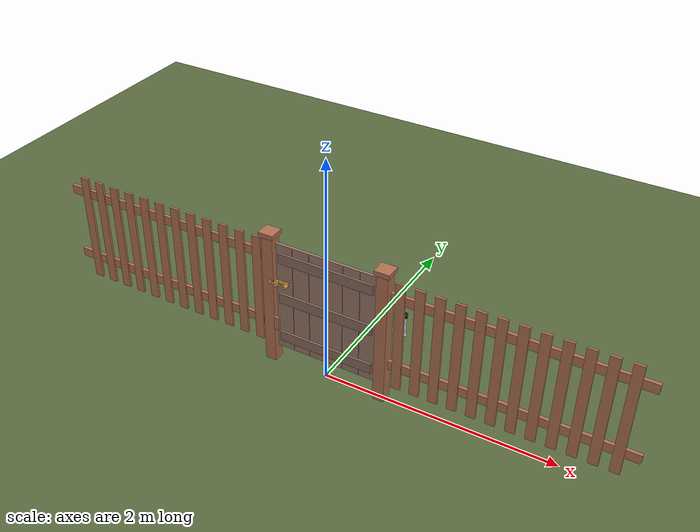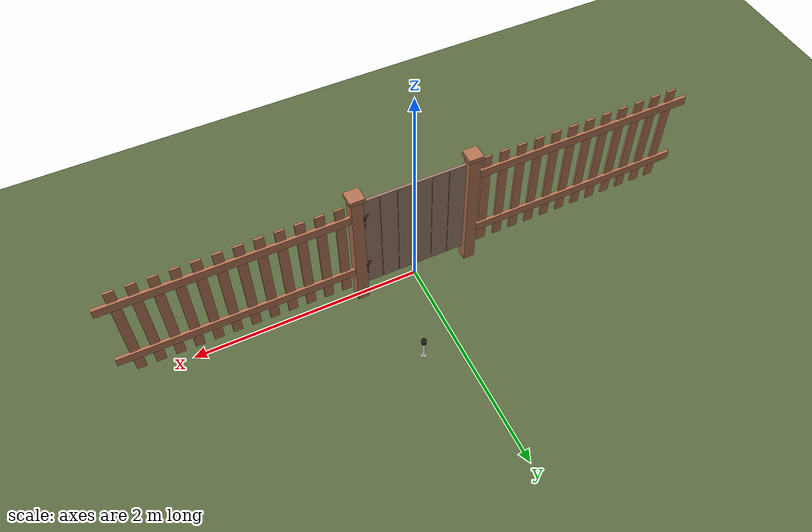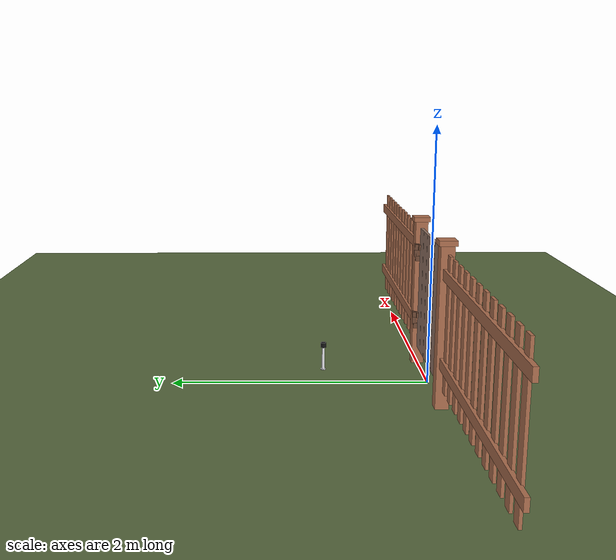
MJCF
<?xml version="1.0" ?>
<mujoco model="db0253_gate_swing_full">
  <compiler angle="radian" meshdir="../../hardware" texturedir="../../textures" autolimits="true" inertiafromgeom="false"/>
  <option timestep="0.002" integrator="implicitfast" cone="elliptic" impratio="10" noslip_iterations="3">
    <flag multiccd="enable"/>
  </option>
  <size memory="16M"/>
  <default>
    <geom condim="4" solref="0.005 1" solimp="0.95 0.99 0.001"/>
    <joint solreflimit="0.005 1" solimplimit="0.95 0.99 0.001"/>
    <tendon solreflimit="0.005 1"/>
    <equality solref="0.002 1"/>
  </default>
  <visual>
    <headlight ambient="0.4 0.4 0.4" diffuse="0.7 0.7 0.7" specular="0.2 0.2 0.2"/>
    <quality shadowsize="4096"/>
    <map znear="0.01" zfar="60"/>
  </visual>
  <asset>
    <mesh name="hinge_b433cbce2b" file="hinge_b433cbce2b.obj"/>
    <mesh name="hinge_jamb_c00731b0bd" file="hinge_jamb_c00731b0bd.obj"/>
    <material name="mat_floor" rgba="0.35 0.42 0.25 1" specular="0.2" shininess="0.15" reflectance="0"/>
    <material name="mat_wall" rgba="0.78 0.76 0.7 1" specular="0.2" shininess="0.1" reflectance="0"/>
    <material name="mat_leaf" rgba="0.6 0.475 0.41 1" specular="0.2" shininess="0.4" reflectance="0"/>
    <material name="mat_leaf_brace" rgba="0.54 0.427 0.369 1" specular="0.2" shininess="0.2" reflectance="0"/>
    <material name="mat_hinge" rgba="0.45 0.3 0.22 1" specular="0.5" shininess="0.1" reflectance="0.2"/>
    <material name="mat_op_brass" rgba="0.85 0.66 0.3 1" specular="0.8" shininess="0.75" reflectance="0.4"/>
    <material name="mat_frame" rgba="0.7 0.45 0.32 1" specular="0.2" shininess="0.4" reflectance="0"/>
    <material name="mat_bumper_stop" rgba="0.08 0.08 0.08 1" specular="0.2" shininess="0.1" reflectance="0"/>
    <material name="mat_stop_base" rgba="0.9 0.9 0.92 1" specular="0.8" shininess="0.9" reflectance="0.4"/>
    <material name="mat_fence" rgba="0.7 0.45 0.32 1" specular="0.2" shininess="0.4" reflectance="0"/>
    <texture name="skybox" type="skybox" builtin="gradient" rgb1="0.6 0.7 0.85" rgb2="0.9 0.92 0.95" width="256" height="256"/>
  </asset>
  <worldbody>
    <light name="sun" pos="1.5 -2.5 4" dir="-0.3 0.5 -0.8" directional="true" diffuse="0.8 0.8 0.8" specular="0.3 0.3 0.3" castshadow="true"/>
    <light name="fill" pos="-1.5 2.5 3" dir="0.3 -0.5 -0.7" directional="true" diffuse="0.35 0.35 0.4" castshadow="false"/>
    <camera name="robot_view" pos="0 -1.875 1.035" xyaxes="1 0 0 0 0.26963 0.962964" fovy="52"/>
    <camera name="far_view" pos="0 1.875 1.035" xyaxes="-1 0 0 0 -0.26963 0.962964" fovy="52"/>
    <camera name="iso" pos="-1.425 -1.575 1.335" xyaxes="0.741536 -0.670913 0 0.242917 0.268487 0.932151" fovy="46"/>
    <camera name="detail_handle" pos="-0.232 -0.896 1.08" xyaxes="0.97561 0.219512 0 -0.070934 0.315262 0.94635" fovy="38"/>
    <geom name="floor" type="box" size="6 6 0.05" pos="0 0 -0.05" material="mat_floor" group="0" contype="1" conaffinity="1" friction="0.8 0.005 0.0001" density="2400"/>
    <geom name="hinge_0_jamb" type="mesh" mesh="hinge_jamb_c00731b0bd" pos="0.453 0.05 0.4" quat="0 0 0 1" material="mat_hinge" group="1" contype="0" conaffinity="0" density="7850"/>
    <geom name="hinge_0_jamb_lug" type="box" size="0.01 0.01575 0.02" pos="0.453 0.03025 0.32956" material="mat_hinge" group="1" contype="0" conaffinity="0" density="7850"/>
    <geom name="hinge_1_jamb" type="mesh" mesh="hinge_jamb_c00731b0bd" pos="0.453 0.05 0.97" quat="0 0 0 1" material="mat_hinge" group="1" contype="0" conaffinity="0" density="7850"/>
    <geom name="hinge_1_jamb_lug" type="box" size="0.01 0.01575 0.02" pos="0.453 0.03025 0.89956" material="mat_hinge" group="1" contype="0" conaffinity="0" density="7850"/>
    <geom name="leaf_slide_bolt_keeper_leg_n" type="box" size="0.007 0.0025 0.013" pos="-0.476 -0.063 0.8115" quat="0 0 -0.707107 0.707107" material="mat_op_brass" group="0" contype="1" conaffinity="1" friction="0.6 0.005 0.0001" density="7800"/>
    <geom name="leaf_slide_bolt_keeper_leg_p" type="box" size="0.007 0.0025 0.013" pos="-0.476 -0.063 0.7885" quat="0 0 -0.707107 0.707107" material="mat_op_brass" group="0" contype="1" conaffinity="1" friction="0.6 0.005 0.0001" density="7800"/>
    <geom name="leaf_slide_bolt_keeper_bridge" type="box" size="0.007 0.014 0.0025" pos="-0.476 -0.0735 0.8" quat="0 0 -0.707107 0.707107" material="mat_op_brass" group="0" contype="1" conaffinity="1" friction="0.6 0.005 0.0001" density="7800"/>
    <geom name="leaf_slide_bolt_keeper_base" type="box" size="0.015 0.02 0.001" pos="-0.476 -0.051 0.8" quat="0 0 -0.707107 0.707107" material="mat_op_brass" group="1" contype="0" conaffinity="0" density="7800"/>
    <geom name="post_hinge" type="box" size="0.05 0.05 0.6" pos="0.506 0 0.6" material="mat_frame" group="0" contype="1" conaffinity="1" friction="0.6 0.005 0.0001" density="350"/>
    <geom name="post_hinge_cap" type="box" size="0.065 0.065 0.02" pos="0.506 0 1.22" material="mat_frame" group="1" contype="0" conaffinity="0" density="350"/>
    <geom name="post_latch" type="box" size="0.05 0.05 0.6" pos="-0.506 0 0.6" material="mat_frame" group="0" contype="1" conaffinity="1" friction="0.6 0.005 0.0001" density="350"/>
    <geom name="post_latch_cap" type="box" size="0.065 0.065 0.02" pos="-0.506 0 1.22" material="mat_frame" group="1" contype="0" conaffinity="0" density="350"/>
    <geom name="gate_stop" type="box" size="0.02 0.012 0.06" pos="-0.436 -0.0465 0.4" material="mat_frame" group="0" contype="1" conaffinity="1" friction="0.6 0.005 0.0001" density="350"/>
    <geom name="door_stop_base" type="cylinder" size="0.022 0.003" pos="0.306864 0.801034 0.003" material="mat_stop_base" group="0" contype="1" conaffinity="1" friction="0.6 0.005 0.0001" density="7850"/>
    <geom name="door_stop_post" type="cylinder" size="0.012 0.092" pos="0.306864 0.801034 0.098" material="mat_stop_base" group="0" contype="1" conaffinity="1" friction="0.6 0.005 0.0001" density="7850"/>
    <geom name="door_stop_bumper" type="cylinder" size="0.022 0.02" pos="0.306864 0.801034 0.21" material="mat_bumper_stop" group="0" contype="1" conaffinity="1" friction="0.6 0.005 0.0001" density="1100"/>
    <geom name="fence_picket_l_0" type="box" size="0.04 0.01 0.5" pos="-0.636 0 0.65" material="mat_fence" group="0" contype="1" conaffinity="1" friction="0.6 0.005 0.0001" density="400"/>
    <geom name="fence_picket_l_1" type="box" size="0.04 0.01 0.5" pos="-0.796 0 0.65" material="mat_fence" group="0" contype="1" conaffinity="1" friction="0.6 0.005 0.0001" density="400"/>
    <geom name="fence_picket_l_2" type="box" size="0.04 0.01 0.5" pos="-0.956 0 0.65" material="mat_fence" group="0" contype="1" conaffinity="1" friction="0.6 0.005 0.0001" density="400"/>
    <geom name="fence_picket_l_3" type="box" size="0.04 0.01 0.5" pos="-1.116 0 0.65" material="mat_fence" group="0" contype="1" conaffinity="1" friction="0.6 0.005 0.0001" density="400"/>
    <geom name="fence_picket_l_4" type="box" size="0.04 0.01 0.5" pos="-1.276 0 0.65" material="mat_fence" group="0" contype="1" conaffinity="1" friction="0.6 0.005 0.0001" density="400"/>
    <geom name="fence_picket_l_5" type="box" size="0.04 0.01 0.5" pos="-1.436 0 0.65" material="mat_fence" group="0" contype="1" conaffinity="1" friction="0.6 0.005 0.0001" density="400"/>
    <geom name="fence_picket_l_6" type="box" size="0.04 0.01 0.5" pos="-1.596 0 0.65" material="mat_fence" group="0" contype="1" conaffinity="1" friction="0.6 0.005 0.0001" density="400"/>
    <geom name="fence_picket_l_7" type="box" size="0.04 0.01 0.5" pos="-1.756 0 0.65" material="mat_fence" group="0" contype="1" conaffinity="1" friction="0.6 0.005 0.0001" density="400"/>
    <geom name="fence_picket_l_8" type="box" size="0.04 0.01 0.5" pos="-1.916 0 0.65" material="mat_fence" group="0" contype="1" conaffinity="1" friction="0.6 0.005 0.0001" density="400"/>
    <geom name="fence_picket_l_9" type="box" size="0.04 0.01 0.5" pos="-2.076 0 0.65" material="mat_fence" group="0" contype="1" conaffinity="1" friction="0.6 0.005 0.0001" density="400"/>
    <geom name="fence_picket_l_10" type="box" size="0.04 0.01 0.5" pos="-2.236 0 0.65" material="mat_fence" group="0" contype="1" conaffinity="1" friction="0.6 0.005 0.0001" density="400"/>
    <geom name="fence_picket_l_11" type="box" size="0.04 0.01 0.5" pos="-2.396 0 0.65" material="mat_fence" group="0" contype="1" conaffinity="1" friction="0.6 0.005 0.0001" density="400"/>
    <geom name="fence_rail_l" type="box" size="1 0.015 0.04" pos="-1.556 0.015 1" material="mat_fence" group="0" contype="1" conaffinity="1" friction="0.6 0.005 0.0001" density="400"/>
    <geom name="fence_rail_b_l" type="box" size="1 0.015 0.04" pos="-1.556 0.015 0.35" material="mat_fence" group="0" contype="1" conaffinity="1" friction="0.6 0.005 0.0001" density="400"/>
    <geom name="fence_picket_r_0" type="box" size="0.04 0.01 0.5" pos="0.636 0 0.65" material="mat_fence" group="0" contype="1" conaffinity="1" friction="0.6 0.005 0.0001" density="400"/>
    <geom name="fence_picket_r_1" type="box" size="0.04 0.01 0.5" pos="0.796 0 0.65" material="mat_fence" group="0" contype="1" conaffinity="1" friction="0.6 0.005 0.0001" density="400"/>
    <geom name="fence_picket_r_2" type="box" size="0.04 0.01 0.5" pos="0.956 0 0.65" material="mat_fence" group="0" contype="1" conaffinity="1" friction="0.6 0.005 0.0001" density="400"/>
    <geom name="fence_picket_r_3" type="box" size="0.04 0.01 0.5" pos="1.116 0 0.65" material="mat_fence" group="0" contype="1" conaffinity="1" friction="0.6 0.005 0.0001" density="400"/>
    <geom name="fence_picket_r_4" type="box" size="0.04 0.01 0.5" pos="1.276 0 0.65" material="mat_fence" group="0" contype="1" conaffinity="1" friction="0.6 0.005 0.0001" density="400"/>
    <geom name="fence_picket_r_5" type="box" size="0.04 0.01 0.5" pos="1.436 0 0.65" material="mat_fence" group="0" contype="1" conaffinity="1" friction="0.6 0.005 0.0001" density="400"/>
    <geom name="fence_picket_r_6" type="box" size="0.04 0.01 0.5" pos="1.596 0 0.65" material="mat_fence" group="0" contype="1" conaffinity="1" friction="0.6 0.005 0.0001" density="400"/>
    <geom name="fence_picket_r_7" type="box" size="0.04 0.01 0.5" pos="1.756 0 0.65" material="mat_fence" group="0" contype="1" conaffinity="1" friction="0.6 0.005 0.0001" density="400"/>
    <geom name="fence_picket_r_8" type="box" size="0.04 0.01 0.5" pos="1.916 0 0.65" material="mat_fence" group="0" contype="1" conaffinity="1" friction="0.6 0.005 0.0001" density="400"/>
    <geom name="fence_picket_r_9" type="box" size="0.04 0.01 0.5" pos="2.076 0 0.65" material="mat_fence" group="0" contype="1" conaffinity="1" friction="0.6 0.005 0.0001" density="400"/>
    <geom name="fence_picket_r_10" type="box" size="0.04 0.01 0.5" pos="2.236 0 0.65" material="mat_fence" group="0" contype="1" conaffinity="1" friction="0.6 0.005 0.0001" density="400"/>
    <geom name="fence_picket_r_11" type="box" size="0.04 0.01 0.5" pos="2.396 0 0.65" material="mat_fence" group="0" contype="1" conaffinity="1" friction="0.6 0.005 0.0001" density="400"/>
    <geom name="fence_rail_r" type="box" size="1 0.015 0.04" pos="1.556 0.015 1" material="mat_fence" group="0" contype="1" conaffinity="1" friction="0.6 0.005 0.0001" density="400"/>
    <geom name="fence_rail_b_r" type="box" size="1 0.015 0.04" pos="1.556 0.015 0.35" material="mat_fence" group="0" contype="1" conaffinity="1" friction="0.6 0.005 0.0001" density="400"/>
    <site name="approach_point" pos="0 -1.5 0" quat="1 0 0 0" size="0.05" rgba="0.2 0.9 0.2 0.5" group="4"/>
    <site name="goal_point" pos="0 1.5 0" quat="1 0 0 0" size="0.05" rgba="0.2 0.9 0.2 0.5" group="4"/>
    <site name="door_plane_center" pos="0 0 0.51" quat="1 0 0 0" size="0.02" rgba="0.2 0.9 0.2 0.5" group="4"/>
    <body name="leaf" pos="0.456 0 0">
      <inertial pos="-0.402708 0.003857 0.659674" mass="8.683216" quat="0.672723 0.67761 -0.201338 0.218519" diaginertia="0.707460246 0.733423373 1.437512007"/>
      <joint name="leaf_hinge" type="hinge" axis="0 0 -1" pos="-0.003 0.05 0" limited="true" range="0 1.396263" damping="0.168492" frictionloss="1.706754" armature="0.02"/>
      <geom name="leaf_slab" type="box" size="0.45 0.0125 0.5" pos="-0.453 0 0.65" material="mat_leaf" group="0" contype="1" conaffinity="1" friction="0.35 0.005 0.0001" density="1"/>
      <geom name="leaf_plank_gap_1" type="box" size="0.002 0.0135 0.49" pos="-0.153 0 0.65" material="mat_leaf_brace" group="1" contype="0" conaffinity="0" density="1"/>
      <geom name="leaf_plank_gap_2" type="box" size="0.002 0.0135 0.49" pos="-0.303 0 0.65" material="mat_leaf_brace" group="1" contype="0" conaffinity="0" density="1"/>
      <geom name="leaf_plank_gap_3" type="box" size="0.002 0.0135 0.49" pos="-0.453 0 0.65" material="mat_leaf_brace" group="1" contype="0" conaffinity="0" density="1"/>
      <geom name="leaf_plank_gap_4" type="box" size="0.002 0.0135 0.49" pos="-0.603 0 0.65" material="mat_leaf_brace" group="1" contype="0" conaffinity="0" density="1"/>
      <geom name="leaf_plank_gap_5" type="box" size="0.002 0.0135 0.49" pos="-0.753 0 0.65" material="mat_leaf_brace" group="1" contype="0" conaffinity="0" density="1"/>
      <geom name="leaf_batten_27" type="box" size="0.42 0.01 0.045" pos="-0.453 -0.0225 0.27" material="mat_leaf_brace" group="1" contype="0" conaffinity="0" density="1"/>
      <geom name="leaf_batten_102" type="box" size="0.42 0.01 0.045" pos="-0.453 -0.0225 1.03" material="mat_leaf_brace" group="1" contype="0" conaffinity="0" density="1"/>
      <geom name="leaf_batten_65" type="box" size="0.42 0.01 0.045" pos="-0.453 -0.0225 0.65" material="mat_leaf_brace" group="1" contype="0" conaffinity="0" density="1"/>
      <geom name="hinge_0" type="mesh" mesh="hinge_b433cbce2b" pos="-0.003 0.05 0.4" quat="0 0 0 1" material="mat_hinge" group="1" contype="0" conaffinity="0" density="7850"/>
      <geom name="hinge_0_lug_foot" type="box" size="0.02 0.007563 0.0228" pos="-0.025 0.020063 0.42508" material="mat_hinge" group="1" contype="0" conaffinity="0" density="7850"/>
      <geom name="hinge_0_lug" type="box" size="0.009 0.015187 0.0228" pos="-0.006 0.040813 0.42508" material="mat_hinge" group="1" contype="0" conaffinity="0" density="7850"/>
      <geom name="hinge_1" type="mesh" mesh="hinge_b433cbce2b" pos="-0.003 0.05 0.97" quat="0 0 0 1" material="mat_hinge" group="1" contype="0" conaffinity="0" density="7850"/>
      <geom name="hinge_1_lug_foot" type="box" size="0.02 0.007563 0.0228" pos="-0.025 0.020063 0.99508" material="mat_hinge" group="1" contype="0" conaffinity="0" density="7850"/>
      <geom name="hinge_1_lug" type="box" size="0.009 0.015187 0.0228" pos="-0.006 0.040813 0.99508" material="mat_hinge" group="1" contype="0" conaffinity="0" density="7850"/>
      <geom name="leaf_slide_bolt_plate" type="box" size="0.054 0.019 0.001" pos="-0.841 -0.0135 0.8" quat="0 0 -0.707107 0.707107" material="mat_op_brass" group="1" contype="0" conaffinity="0" density="7800"/>
      <geom name="leaf_slide_bolt_guide_0_leg_n" type="box" size="0.006 0.002 0.03125" pos="-0.887 -0.04375 0.811" quat="0 0 -0.707107 0.707107" material="mat_op_brass" group="1" contype="0" conaffinity="0" density="7800"/>
      <geom name="leaf_slide_bolt_guide_0_leg_p" type="box" size="0.006 0.002 0.03125" pos="-0.887 -0.04375 0.789" quat="0 0 -0.707107 0.707107" material="mat_op_brass" group="1" contype="0" conaffinity="0" density="7800"/>
      <geom name="leaf_slide_bolt_guide_0_bridge" type="box" size="0.006 0.013 0.002" pos="-0.887 -0.073 0.8" quat="0 0 -0.707107 0.707107" material="mat_op_brass" group="1" contype="0" conaffinity="0" density="7800"/>
      <geom name="leaf_slide_bolt_guide_1_leg_n" type="box" size="0.006 0.002 0.03125" pos="-0.797 -0.04375 0.811" quat="0 0 -0.707107 0.707107" material="mat_op_brass" group="1" contype="0" conaffinity="0" density="7800"/>
      <geom name="leaf_slide_bolt_guide_1_leg_p" type="box" size="0.006 0.002 0.03125" pos="-0.797 -0.04375 0.789" quat="0 0 -0.707107 0.707107" material="mat_op_brass" group="1" contype="0" conaffinity="0" density="7800"/>
      <geom name="leaf_slide_bolt_guide_1_bridge" type="box" size="0.006 0.013 0.002" pos="-0.797 -0.073 0.8" quat="0 0 -0.707107 0.707107" material="mat_op_brass" group="1" contype="0" conaffinity="0" density="7800"/>
      <site name="leaf_edge_mid" pos="-0.903 0 0.5" quat="1 0 0 0" size="0.02" rgba="0.2 0.9 0.2 0.5" group="4"/>
      <body name="leaf_slide_bolt" pos="-0.903 -0.062 0.8">
        <inertial pos="0.015176 -0.00492 0" mass="0.111784" quat="0.996956 0 0 -0.077968" diaginertia="0.000011166 0.000082162 0.00009144"/>
        <joint name="leaf_slide_bolt_slide" type="slide" axis="1 0 0" limited="true" range="0 0.045" damping="1" frictionloss="1" armature="0.1"/>
        <geom name="leaf_slide_bolt_rod" type="capsule" size="0.006 0.044" pos="0.009 0 0" quat="0.707107 0 -0.707107 0" material="mat_op_brass" group="0" contype="1" conaffinity="1" friction="0.6 0.005 0.0001" density="7850"/>
        <geom name="leaf_slide_bolt_knob" type="capsule" size="0.005 0.01" pos="0.035 -0.015 0" quat="0.707107 0.707107 0 0" material="mat_op_brass" group="0" contype="1" conaffinity="1" friction="0.6 0.005 0.0001" density="7850"/>
        <geom name="leaf_slide_bolt_knob_end" type="sphere" size="0.00675" pos="0.035 -0.03 0" material="mat_op_brass" group="1" contype="0" conaffinity="0" density="7850"/>
        <site name="leaf_grip_n" pos="0.035 -0.034 0" quat="1 0 0 0" size="0.012" rgba="0.2 0.9 0.2 0.5" group="4"/>
      </body>
    </body>
  </worldbody>
  <sensor>
    <jointpos name="leaf_hinge_pos" joint="leaf_hinge"/>
    <jointvel name="leaf_hinge_vel" joint="leaf_hinge"/>
    <jointpos name="leaf_slide_bolt_slide_pos" joint="leaf_slide_bolt_slide"/>
    <jointvel name="leaf_slide_bolt_slide_vel" joint="leaf_slide_bolt_slide"/>
  </sensor>
</mujoco>
